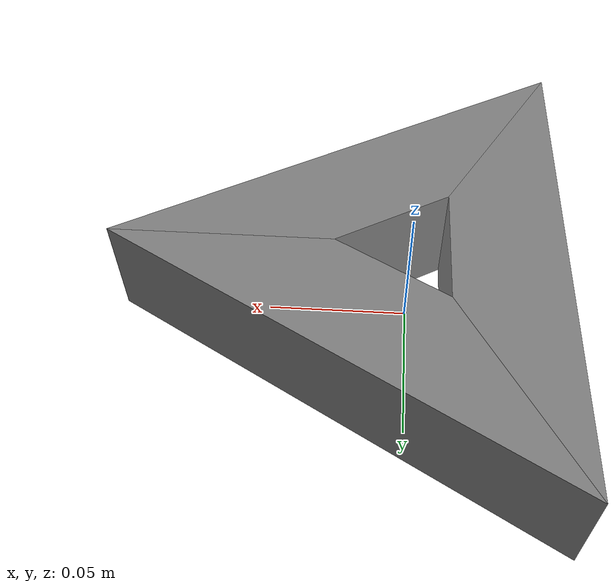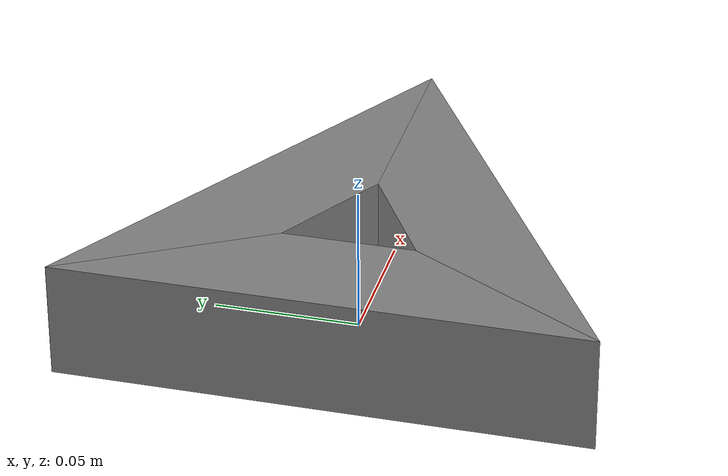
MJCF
<mujoco model="hole">
  <compiler angle="radian"/>
  <default>
    <default class="visual">
      <geom group="0" type="mesh" contype="0" conaffinity="0"/>
    </default>
    <default class="collision">
      <geom group="0" type="mesh" solimp="0.9 0.95 0.001 0.5 2" solref=".004 1" condim="6"/>
    </default>
  </default>
  <asset>
    <texture file="../textures/red-wood.png" type="cube" name="red-wood" />
    <material name="plate_mat" texture="red-wood" texrepeat="3 3" specular="0.4" shininess="0.1" />
    <mesh file="triangle-hole/triangle_triangle_hole_0.obj" name="triangle_triangle_hole_0"/>
    <mesh file="triangle-hole/triangle_triangle_hole_1.obj" name="triangle_triangle_hole_1"/>
    <mesh file="triangle-hole/triangle_triangle_hole_2.obj" name="triangle_triangle_hole_2"/>
    <mesh file="triangle-hole/round_triangle_hole_0.obj" name="round_triangle_hole_0"/>
    <mesh file="triangle-hole/round_triangle_hole_1.obj" name="round_triangle_hole_1"/>
    <mesh file="triangle-hole/round_triangle_hole_2.obj" name="round_triangle_hole_2"/>
    <mesh file="triangle-hole/triangle_hole_0.obj" name="triangle_hole_0"/>
    <mesh file="triangle-hole/triangle_hole_1.obj" name="triangle_hole_1"/>
    <mesh file="triangle-hole/triangle_hole_2.obj" name="triangle_hole_2"/>
    <mesh file="triangle-hole/triangle_hole_3.obj" name="triangle_hole_3"/>
    <mesh file="triangle-hole/triangle_hole_4.obj" name="triangle_hole_4"/>
    <mesh file="triangle-hole/triangle_hole_5.obj" name="triangle_hole_5"/>
  </asset>

  <!-- Always initialize the free camera to point at the origin. -->
  <worldbody>
    <body>
      <body name="object">
        <site rgba="0 0 0 0" size="0.005" pos="0 0 0.0" name="center"/>
        <site pos="0 0 0" size="0.005 .1" quat="0.707105  0 0.707108 0 " rgba="1 0 0 0" type="cylinder" group="1"/>
        <site pos="0 0 0" size="0.005 .1" quat="0.707105 0.707108 0 0" rgba="0 1 0 0" type="cylinder" group="1"/>
        <site pos="0 0 0" size="0.005 .1" quat="1 0 0 0" rgba="0 0 1 0" type="cylinder" group="1"/>
        <geom mesh="triangle_triangle_hole_0" class="collision"/>
        <geom mesh="triangle_triangle_hole_1" class="collision"/>
        <geom mesh="triangle_triangle_hole_2" class="collision"/>
      </body>
    </body>
  </worldbody>
</mujoco>
